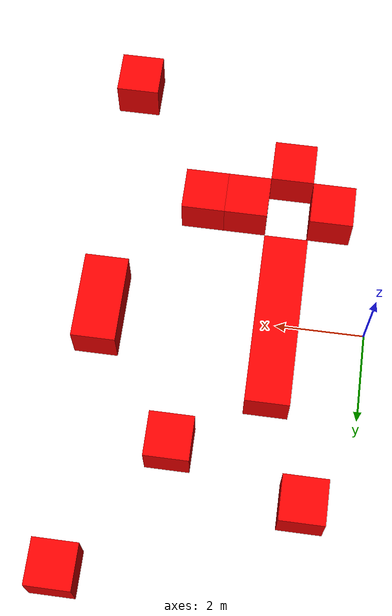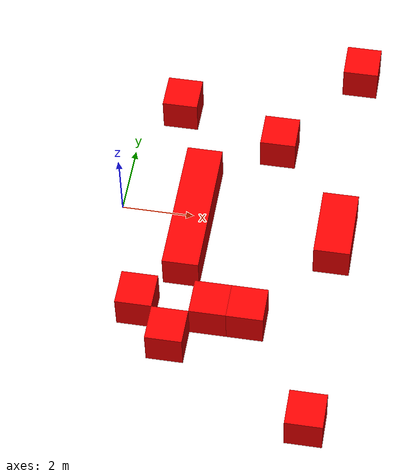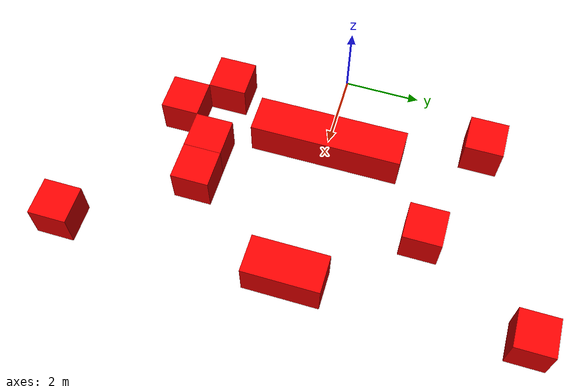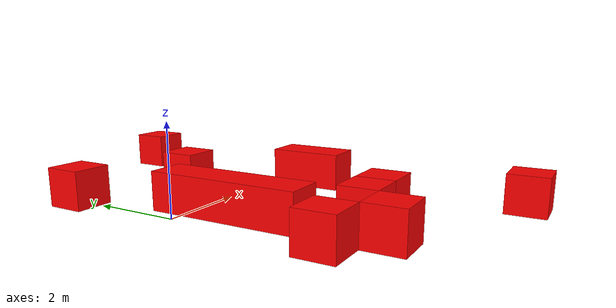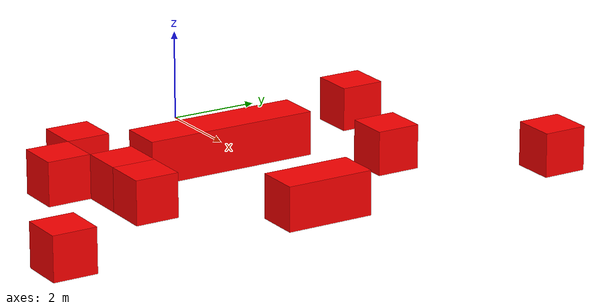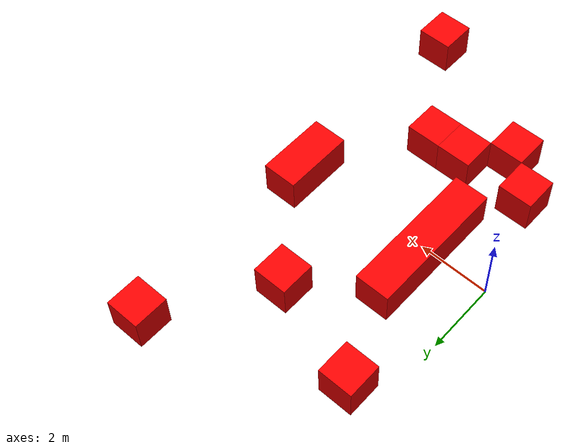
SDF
<sdf version="1.6">
 <world name="underwater_world">
  <plugin filename="gz-sim-physics-system" name="gz::sim::systems::Physics"/>
  <plugin filename="gz-sim-user-commands-system" name="gz::sim::systems::UserCommands"/>
  <plugin filename="gz-sim-scene-broadcaster-system" name="gz::sim::systems::SceneBroadcaster"/>
  <plugin filename="libgz-sim-imu-system.so" name="gz::sim::systems::Imu"/>
  <plugin filename="gz-sim-buoyancy-system" name="gz::sim::systems::Buoyancy">
   <graded_buoyancy>
    <default_density>1000</default_density>
    <density_change><above_depth>0</above_depth><density>1</density></density_change>
   </graded_buoyancy>
  </plugin>
  <include><uri>https://fuel.gazebosim.org/1.0/OpenRobotics/models/Sun</uri></include>
  <scene><ambient>1.0 1.0 1.0</ambient><background>0.8 0.8 0.8</background></scene>
  <light type="directional" name="sun1">
   <pose>50 0 150 0 0 0</pose>
   <diffuse>1 1 1 1</diffuse>
   <specular>.1 .1 .1 1</specular>
   <direction>0.3 0.3 -1</direction>
   <cast_shadows>false</cast_shadows>
  </light>
  <model name="obs_1">
   <pose>6 0 0 0 0 0</pose>
   <link name="obs_1_link">
    <inertial>
     <inertia><ixx>0.16666</ixx><ixy>0</ixy><ixz>0</ixz><iyy>0.16666</iyy><iyz>0</iyz><izz>0.16666</izz></inertia>
     <mass>970.0</mass>
    </inertial>
    <collision name="obs_1_collision"><geometry><box><size>1 1 1</size></box></geometry></collision>
    <visual name="obs_1_visual">
     <geometry><box><size>1 2 1</size></box></geometry>
     <material><ambient>1 0 0 1</ambient><diffuse>1 0 0 1</diffuse><specular>1 0 0 1</specular></material>
    </visual>
   </link>
   <plugin filename="gz-sim-pose-publisher-system" name="gz::sim::systems::PosePublisher">
    <publish_link_pose>false</publish_link_pose>
    <publish_sensor_pose>false</publish_sensor_pose>
    <publish_collision_pose>false</publish_collision_pose>
    <publish_visual_pose>false</publish_visual_pose>
    <publish_model_pose>true</publish_model_pose>
    <publish_nested_model_pose>true</publish_nested_model_pose>
   </plugin>
  </model>
  <model name="obs_2">
   <static>true</static>
   <pose>6 -6 0 0 0 0</pose>
   <link name="obs_2_link">
    <inertial>
     <inertia><ixx>0.16666</ixx><ixy>0</ixy><ixz>0</ixz><iyy>0.16666</iyy><iyz>0</iyz><izz>0.16666</izz></inertia>
     <mass>900.0</mass>
    </inertial>
    <collision name="obs_2_collision"><geometry><box><size>1 1 1</size></box></geometry></collision>
    <visual name="obs_2_visual">
     <geometry><box><size>1 1 1</size></box></geometry>
     <material><ambient>1 0 0 1</ambient><diffuse>1 0 0 1</diffuse><specular>1 0 0 1</specular></material>
    </visual>
   </link>
   <plugin filename="gz-sim-pose-publisher-system" name="gz::sim::systems::PosePublisher">
    <publish_link_pose>false</publish_link_pose>
    <publish_sensor_pose>false</publish_sensor_pose>
    <publish_collision_pose>false</publish_collision_pose>
    <publish_visual_pose>false</publish_visual_pose>
    <publish_model_pose>true</publish_model_pose>
    <publish_nested_model_pose>true</publish_nested_model_pose>
   </plugin>
  </model>
  <model name="obs_3">
   <static>true</static>
   <pose>6 6 0 0 0 0</pose>
   <link name="obs_3_link">
    <inertial>
     <inertia><ixx>0.16666</ixx><ixy>0</ixy><ixz>0</ixz><iyy>0.16666</iyy><iyz>0</iyz><izz>0.16666</izz></inertia>
     <mass>900.0</mass>
    </inertial>
    <collision name="obs_3_collision"><geometry><box><size>1 1 1</size></box></geometry></collision>
    <visual name="obs_3_visual">
     <geometry><box><size>1 1 1</size></box></geometry>
     <material><ambient>1 0 0 1</ambient><diffuse>1 0 0 1</diffuse><specular>1 0 0 1</specular></material>
    </visual>
   </link>
   <plugin filename="gz-sim-pose-publisher-system" name="gz::sim::systems::PosePublisher">
    <publish_link_pose>false</publish_link_pose>
    <publish_sensor_pose>false</publish_sensor_pose>
    <publish_collision_pose>false</publish_collision_pose>
    <publish_visual_pose>false</publish_visual_pose>
    <publish_model_pose>true</publish_model_pose>
    <publish_nested_model_pose>true</publish_nested_model_pose>
   </plugin>
  </model>
  <model name="obs_4">
   <pose>4 -3 0 0 0 0</pose>
   <link name="obs_4_link">
    <inertial>
     <inertia><ixx>0.16666</ixx><ixy>0</ixy><ixz>0</ixz><iyy>0.16666</iyy><iyz>0</iyz><izz>0.16666</izz></inertia>
     <mass>971.0</mass>
    </inertial>
    <collision name="obs_4_collision"><geometry><box><size>1 1 1</size></box></geometry></collision>
    <visual name="obs_4_visual">
     <geometry><box><size>1 1 1</size></box></geometry>
     <material><ambient>1 0 0 1</ambient><diffuse>1 0 0 1</diffuse><specular>1 0 0 1</specular></material>
    </visual>
   </link>
   <plugin filename="gz-sim-pose-publisher-system" name="gz::sim::systems::PosePublisher">
    <publish_link_pose>false</publish_link_pose>
    <publish_sensor_pose>false</publish_sensor_pose>
    <publish_collision_pose>false</publish_collision_pose>
    <publish_visual_pose>false</publish_visual_pose>
    <publish_model_pose>true</publish_model_pose>
    <publish_nested_model_pose>true</publish_nested_model_pose>
   </plugin>
  </model>
  <model name="obs_5">
   <pose>4 3 0 0 0 0</pose>
   <link name="obs_5_link">
    <inertial>
     <inertia><ixx>0.16666</ixx><ixy>0</ixy><ixz>0</ixz><iyy>0.16666</iyy><iyz>0</iyz><izz>0.16666</izz></inertia>
     <mass>965.0</mass>
    </inertial>
    <collision name="obs_5_collision"><geometry><box><size>1 1 1</size></box></geometry></collision>
    <visual name="obs_5_visual">
     <geometry><box><size>1 1 1</size></box></geometry>
     <material><ambient>1 0 0 1</ambient><diffuse>1 0 0 1</diffuse><specular>1 0 0 1</specular></material>
    </visual>
   </link>
   <plugin filename="gz-sim-pose-publisher-system" name="gz::sim::systems::PosePublisher">
    <publish_link_pose>false</publish_link_pose>
    <publish_sensor_pose>false</publish_sensor_pose>
    <publish_collision_pose>false</publish_collision_pose>
    <publish_visual_pose>false</publish_visual_pose>
    <publish_model_pose>true</publish_model_pose>
    <publish_nested_model_pose>true</publish_nested_model_pose>
   </plugin>
  </model>
  <model name="obs_6">
   <pose>3 -3 0 0 0 0</pose>
   <link name="obs_6_link">
    <inertial>
     <inertia><ixx>0.16666</ixx><ixy>0</ixy><ixz>0</ixz><iyy>0.16666</iyy><iyz>0</iyz><izz>0.16666</izz></inertia>
     <mass>965.0</mass>
    </inertial>
    <collision name="obs_6_collision"><geometry><box><size>1 1 1</size></box></geometry></collision>
    <visual name="obs_6_visual">
     <geometry><box><size>1 1 1</size></box></geometry>
     <material><ambient>1 0 0 1</ambient><diffuse>1 0 0 1</diffuse><specular>1 0 0 1</specular></material>
    </visual>
   </link>
   <plugin filename="gz-sim-pose-publisher-system" name="gz::sim::systems::PosePublisher">
    <publish_link_pose>false</publish_link_pose>
    <publish_sensor_pose>false</publish_sensor_pose>
    <publish_collision_pose>false</publish_collision_pose>
    <publish_visual_pose>false</publish_visual_pose>
    <publish_model_pose>true</publish_model_pose>
    <publish_nested_model_pose>true</publish_nested_model_pose>
   </plugin>
  </model>
  <model name="obs_7">
   <pose>2 -4 0 0 0 0</pose>
   <link name="obs_7_link">
    <inertial>
     <inertia><ixx>0.16666</ixx><ixy>0</ixy><ixz>0</ixz><iyy>0.16666</iyy><iyz>0</iyz><izz>0.16666</izz></inertia>
     <mass>968.0</mass>
    </inertial>
    <collision name="obs_7_collision"><geometry><box><size>1 1 1</size></box></geometry></collision>
    <visual name="obs_7_visual">
     <geometry><box><size>1 1 1</size></box></geometry>
     <material><ambient>1 0 0 1</ambient><diffuse>1 0 0 1</diffuse><specular>1 0 0 1</specular></material>
    </visual>
   </link>
   <plugin filename="gz-sim-pose-publisher-system" name="gz::sim::systems::PosePublisher">
    <publish_link_pose>false</publish_link_pose>
    <publish_sensor_pose>false</publish_sensor_pose>
    <publish_collision_pose>false</publish_collision_pose>
    <publish_visual_pose>false</publish_visual_pose>
    <publish_model_pose>true</publish_model_pose>
    <publish_nested_model_pose>true</publish_nested_model_pose>
   </plugin>
  </model>
  <model name="obs_8">
   <pose>2 0 0 0 0 0</pose>
   <link name="obs_8_link">
    <inertial>
     <inertia><ixx>0.16666</ixx><ixy>0</ixy><ixz>0</ixz><iyy>0.16666</iyy><iyz>0</iyz><izz>0.16666</izz></inertia>
     <mass>969.0</mass>
    </inertial>
    <collision name="obs_8_collision"><geometry><box><size>1 1 1</size></box></geometry></collision>
    <visual name="obs_8_visual">
     <geometry><box><size>1 4 1</size></box></geometry>
     <material><ambient>1 0 0 1</ambient><diffuse>1 0 0 1</diffuse><specular>1 0 0 1</specular></material>
    </visual>
   </link>
   <plugin filename="gz-sim-pose-publisher-system" name="gz::sim::systems::PosePublisher">
    <publish_link_pose>false</publish_link_pose>
    <publish_sensor_pose>false</publish_sensor_pose>
    <publish_collision_pose>false</publish_collision_pose>
    <publish_visual_pose>false</publish_visual_pose>
    <publish_model_pose>true</publish_model_pose>
    <publish_nested_model_pose>true</publish_nested_model_pose>
   </plugin>
  </model>
  <model name="obs_9">
   <static>true</static>
   <pose>1 4 0 0 0 0</pose>
   <link name="obs_9_link">
    <inertial>
     <inertia><ixx>0.16666</ixx><ixy>0</ixy><ixz>0</ixz><iyy>0.16666</iyy><iyz>0</iyz><izz>0.16666</izz></inertia>
     <mass>900.0</mass>
    </inertial>
    <collision name="obs_9_collision"><geometry><box><size>1 1 1</size></box></geometry></collision>
    <visual name="obs_9_visual">
     <geometry><box><size>1 1 1</size></box></geometry>
     <material><ambient>1 0 0 1</ambient><diffuse>1 0 0 1</diffuse><specular>1 0 0 1</specular></material>
    </visual>
   </link>
   <plugin filename="gz-sim-pose-publisher-system" name="gz::sim::systems::PosePublisher">
    <publish_link_pose>false</publish_link_pose>
    <publish_sensor_pose>false</publish_sensor_pose>
    <publish_collision_pose>false</publish_collision_pose>
    <publish_visual_pose>false</publish_visual_pose>
    <publish_model_pose>true</publish_model_pose>
    <publish_nested_model_pose>true</publish_nested_model_pose>
   </plugin>
  </model>
  <model name="obs_10">
   <static>true</static>
   <pose>1 -3 0 0 0 0</pose>
   <link name="obs_10_link">
    <inertial>
     <inertia><ixx>0.16666</ixx><ixy>0</ixy><ixz>0</ixz><iyy>0.16666</iyy><iyz>0</iyz><izz>0.16666</izz></inertia>
     <mass>900.0</mass>
    </inertial>
    <collision name="obs_10_collision"><geometry><box><size>1 1 1</size></box></geometry></collision>
    <visual name="obs_10_visual">
     <geometry><box><size>1 1 1</size></box></geometry>
     <material><ambient>1 0 0 1</ambient><diffuse>1 0 0 1</diffuse><specular>1 0 0 1</specular></material>
    </visual>
   </link>
   <plugin filename="gz-sim-pose-publisher-system" name="gz::sim::systems::PosePublisher">
    <publish_link_pose>false</publish_link_pose>
    <publish_sensor_pose>false</publish_sensor_pose>
    <publish_collision_pose>false</publish_collision_pose>
    <publish_visual_pose>false</publish_visual_pose>
    <publish_model_pose>true</publish_model_pose>
    <publish_nested_model_pose>true</publish_nested_model_pose>
   </plugin>
  </model>
 </world>
</sdf>
